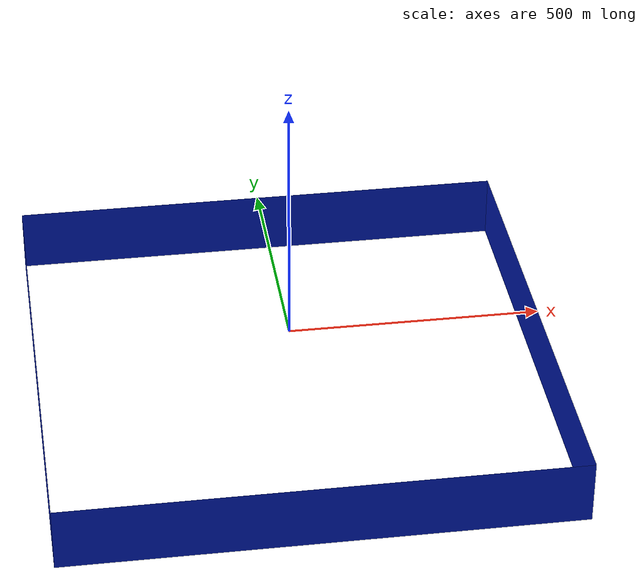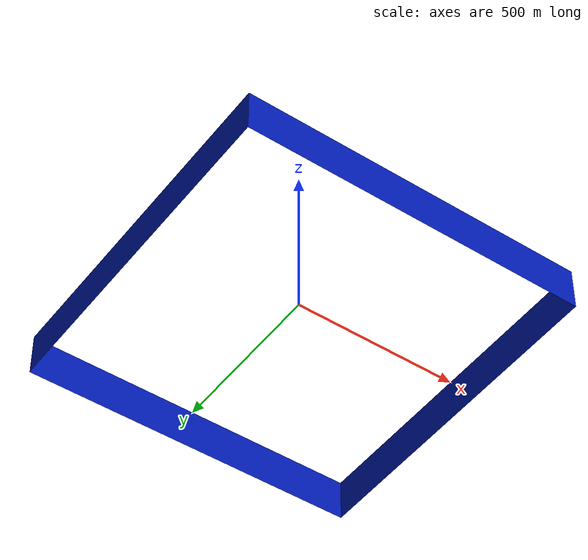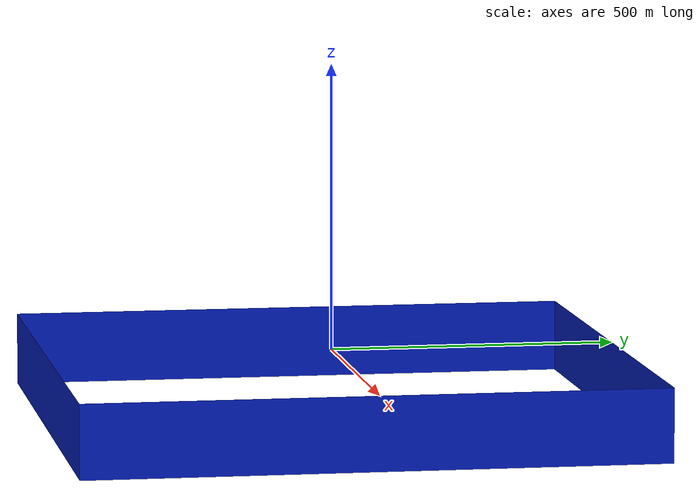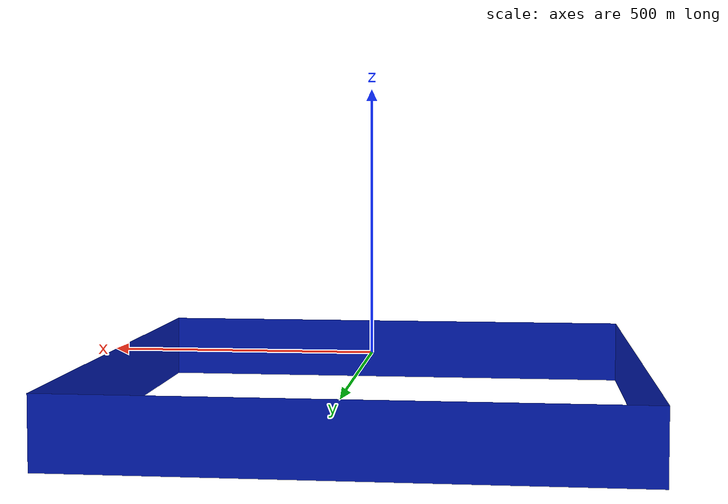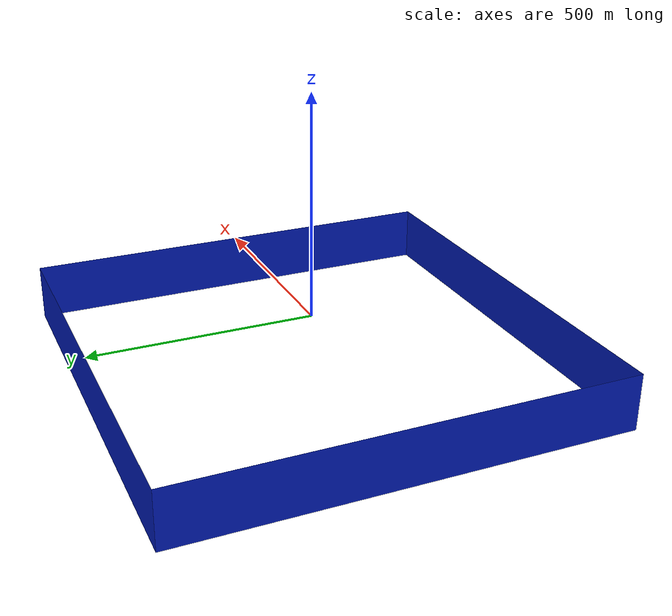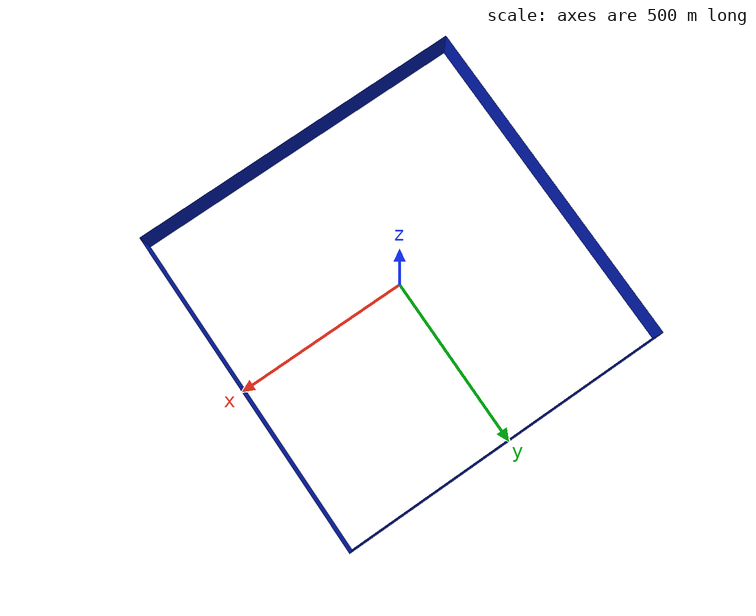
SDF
<?xml version="1.0"?>
<sdf version="1.10">
    <model name="Sea Background">
        <pose>0 0 -64 0 0 0</pose>
        <static>true</static>
        <link name="link">
            <visual name="visual">
                <geometry>
                    <mesh>
                        <uri>./meshes/sea_background.dae</uri>
                        <scale>2 2 1</scale>
                    </mesh>
                </geometry>
                <material>
                    <ambient>0.0 0.05 0.8 0.92</ambient>
                    <diffuse>0.0 0.1 0.7 0.92</diffuse>
                    <specular>0.7 0.7 0.7 0.92</specular>
                </material>
            </visual>
        </link>
    </model>
</sdf>
